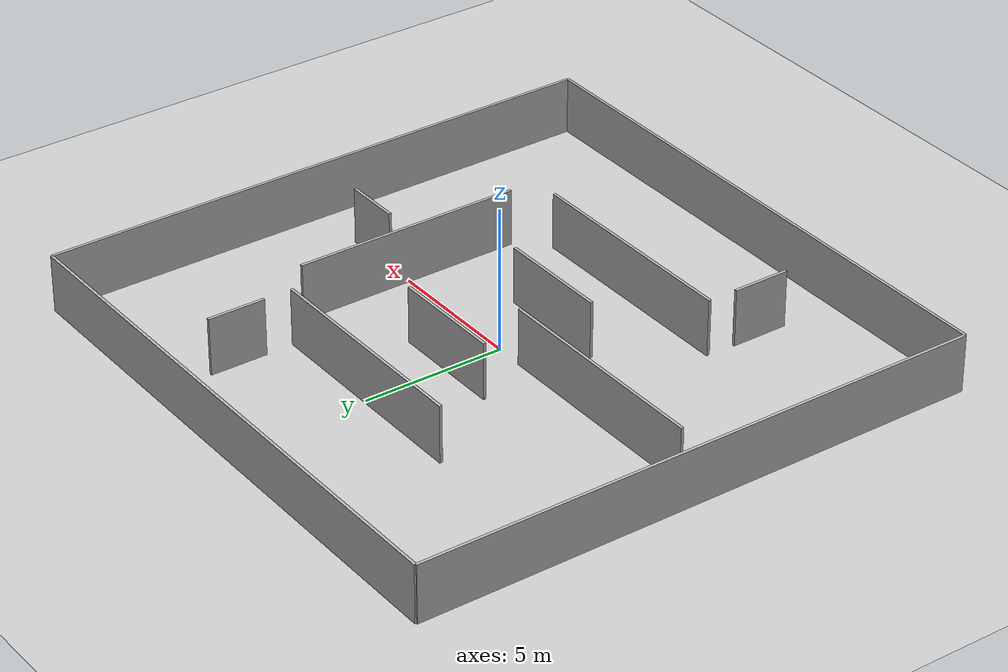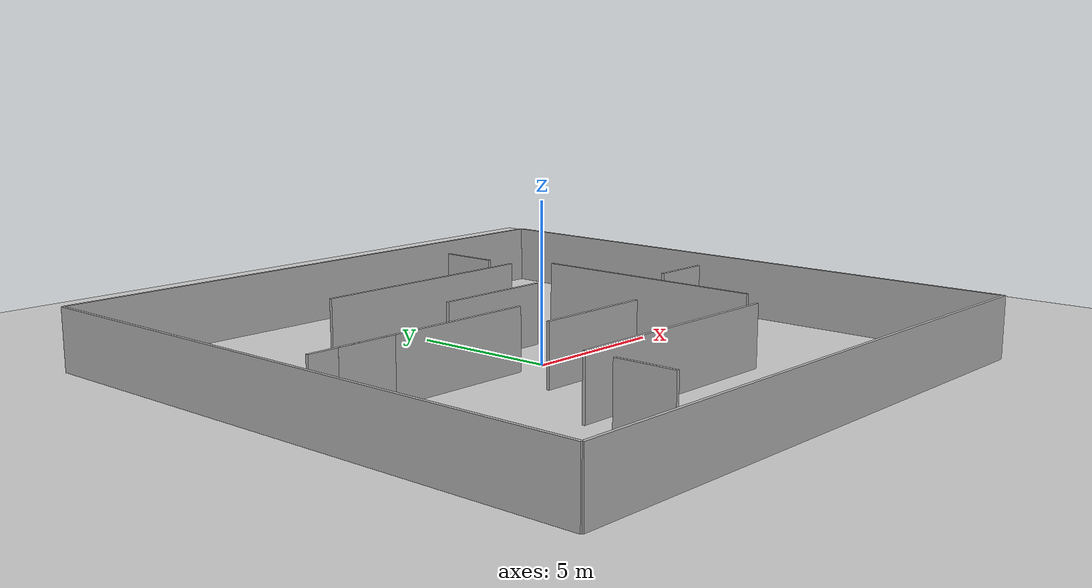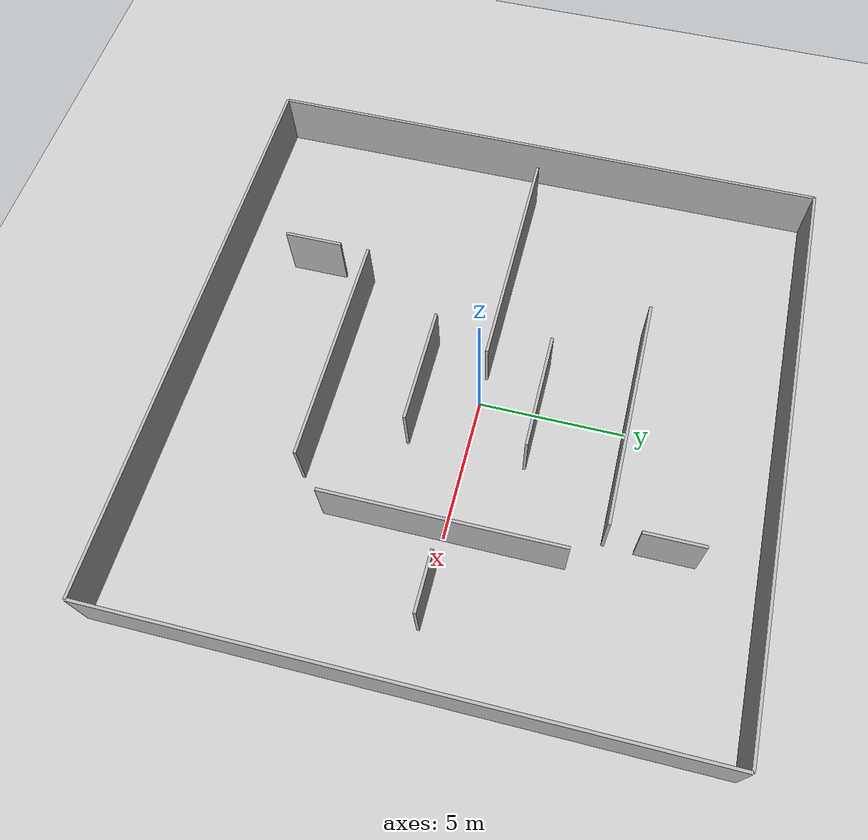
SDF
<?xml version="1.0" ?>
<sdf version="1.6">
  <world name="pursuit_world">
    <gui fullscreen="0">
      <camera name="user_camera">
        <pose>0 0 15 0 1.5707 1.5707</pose>
        <view_controller>orbit</view_controller>
        <projection_type>orthographic</projection_type>
      </camera>
    </gui>
    <physics name="1ms" type="ignored">
      <max_step_size>0.001</max_step_size>
      <real_time_factor>15.0</real_time_factor>
      <real_time_update_rate>1000</real_time_update_rate>
    </physics>
    <plugin filename="gz-sim-physics-system" name="gz::sim::systems::Physics"/>
    <plugin filename="gz-sim-user-commands-system" name="gz::sim::systems::UserCommands"/>
    <plugin filename="gz-sim-scene-broadcaster-system" name="gz::sim::systems::SceneBroadcaster"/>
    <plugin filename="gz-sim-contact-system" name="gz::sim::systems::Contact"/>
    <plugin filename="gz-sim-sensors-system" name="gz::sim::systems::Sensors">
      <render_engine>ogre2</render_engine>
    </plugin>

    <light type="directional" name="sun">
      <cast_shadows>true</cast_shadows>
      <pose>0 0 10 0 0 0</pose>
      <diffuse>0.8 0.8 0.8 1</diffuse>
      <specular>0.2 0.2 0.2 1</specular>
      <attenuation>
        <range>1000</range>
        <constant>0.9</constant>
        <linear>0.01</linear>
        <quadratic>0.001</quadratic>
      </attenuation>
      <direction>-0.5 0.1 -0.9</direction>
    </light>

    <model name="ground_plane">
      <static>true</static>
      <link name="link">
        <collision name="collision">
          <geometry>
            <plane>
              <normal>0 0 1</normal>
              <size>100 100</size>
            </plane>
          </geometry>
        </collision>
        <visual name="visual">
          <geometry>
            <plane>
              <normal>0 0 1</normal>
              <size>100 100</size>
            </plane>
          </geometry>
          <material>
            <ambient>0.8 0.8 0.8 1</ambient>
            <diffuse>0.8 0.8 0.8 1</diffuse>
            <specular>0.8 0.8 0.8 1</specular>
          </material>
        </visual>
      </link>
    </model>

    <!-- Maze Obstacles -->
    <model name="maze">
      <static>true</static>

      <!-- Outer Walls -->
      <link name="outer_wall_north">
        <pose>0 10 1 0 0 0</pose>
        <collision name="collision">
          <geometry><box><size>20 0.1 2</size></box></geometry>
        </collision>
        <visual name="visual">
          <geometry><box><size>20 0.1 2</size></box></geometry>
        </visual>
      </link>
      <link name="outer_wall_south">
        <pose>0 -10 1 0 0 0</pose>
        <collision name="collision">
          <geometry><box><size>20 0.1 2</size></box></geometry>
        </collision>
        <visual name="visual">
          <geometry><box><size>20 0.1 2</size></box></geometry>
        </visual>
      </link>
      <link name="outer_wall_east">
        <pose>10 0 1 0 0 1.5707</pose>
        <collision name="collision">
          <geometry><box><size>20 0.1 2</size></box></geometry>
        </collision>
        <visual name="visual">
          <geometry><box><size>20 0.1 2</size></box></geometry>
        </visual>
      </link>
      <link name="outer_wall_west">
        <pose>-10 0 1 0 0 1.5707</pose>
        <collision name="collision">
          <geometry><box><size>20 0.1 2</size></box></geometry>
        </collision>
        <visual name="visual">
          <geometry><box><size>20 0.1 2</size></box></geometry>
        </visual>
      </link>

      <!-- Inner Maze Walls -->
      <!-- Horizontal Walls -->
      <link name="wall_h1">
        <pose>0 5 1 0 0 0</pose>
        <collision name="collision">
          <geometry><box><size>8 0.1 2</size></box></geometry>
        </collision>
        <visual name="visual">
          <geometry><box><size>8 0.1 2</size></box></geometry>
        </visual>
      </link>
      <link name="wall_h2">
        <pose>0 -5 1 0 0 0</pose>
        <collision name="collision">
          <geometry><box><size>8 0.1 2</size></box></geometry>
        </collision>
        <visual name="visual">
          <geometry><box><size>8 0.1 2</size></box></geometry>
        </visual>
      </link>
      <link name="wall_h3">
        <pose>0 -2 1 0 0 0</pose>
        <collision name="collision">
          <geometry><box><size>4 0.1 2</size></box></geometry>
        </collision>
        <visual name="visual">
          <geometry><box><size>4 0.1 2</size></box></geometry>
        </visual>
      </link>
      <link name="wall_h4">
        <pose>0 2 1 0 0 0</pose>
        <collision name="collision">
          <geometry><box><size>4 0.1 2</size></box></geometry>
        </collision>
        <visual name="visual">
          <geometry><box><size>4 0.1 2</size></box></geometry>
        </visual>
      </link>

      <!-- Vertical Walls -->
      <link name="wall_v1">
        <pose>5 0 1 0 0 0</pose>
        <collision name="collision">
          <geometry><box><size>0.1 8 2</size></box></geometry>
        </collision>
        <visual name="visual">
          <geometry><box><size>0.1 8 2</size></box></geometry>
        </visual>
      </link>
      <link name="wall_v2">
        <pose>-5 0 1 0 0 1.5707</pose>
        <collision name="collision">
          <geometry><box><size>0.1 8 2</size></box></geometry>
        </collision>
        <visual name="visual">
          <geometry><box><size>0.1 8 2</size></box></geometry>
        </visual>
      </link>

      <!-- Dead Ends -->
      <link name="dead_end_1">
        <pose>4 7 1 0 0 0</pose>
        <collision name="collision">
          <geometry><box><size>0.1 2 2</size></box></geometry>
        </collision>
        <visual name="visual">
          <geometry><box><size>0.1 2 2</size></box></geometry>
        </visual>
      </link>
      <link name="dead_end_2">
        <pose>-4 -7 1 0 0 0</pose>
        <collision name="collision">
          <geometry><box><size>0.1 2 2</size></box></geometry>
        </collision>
        <visual name="visual">
          <geometry><box><size>0.1 2 2</size></box></geometry>
        </visual>
      </link>
      <link name="dead_end_3">
        <pose>7 0 1 0 0 1.5707</pose>
        <collision name="collision">
          <geometry><box><size>0.1 2 2</size></box></geometry>
        </collision>
        <visual name="visual">
          <geometry><box><size>0.1 2 2</size></box></geometry>
        </visual>
      </link>
      <link name="dead_end_4">
        <pose>-7 0 1 0 0 1.5707</pose>
        <collision name="collision">
          <geometry><box><size>0.1 2 2</size></box></geometry>
        </collision>
        <visual name="visual">
          <geometry><box><size>0.1 2 2</size></box></geometry>
        </visual>
      </link>
    </model>
  </world>
</sdf>
